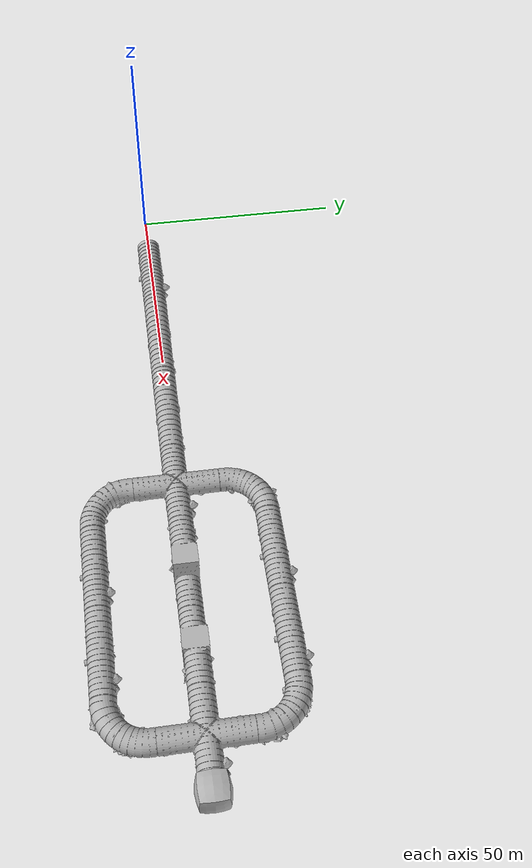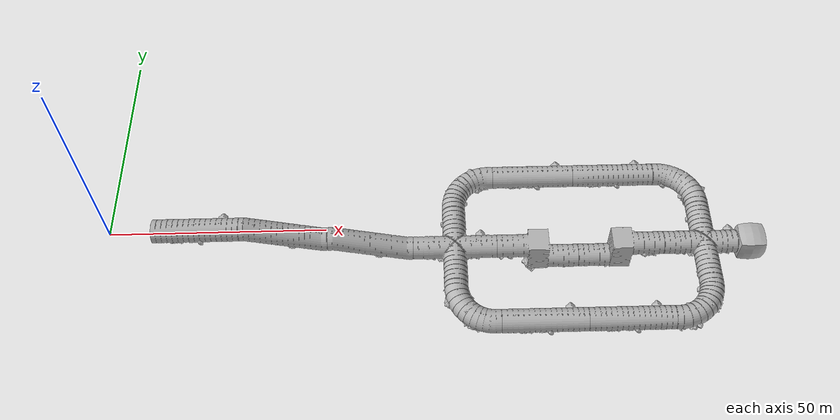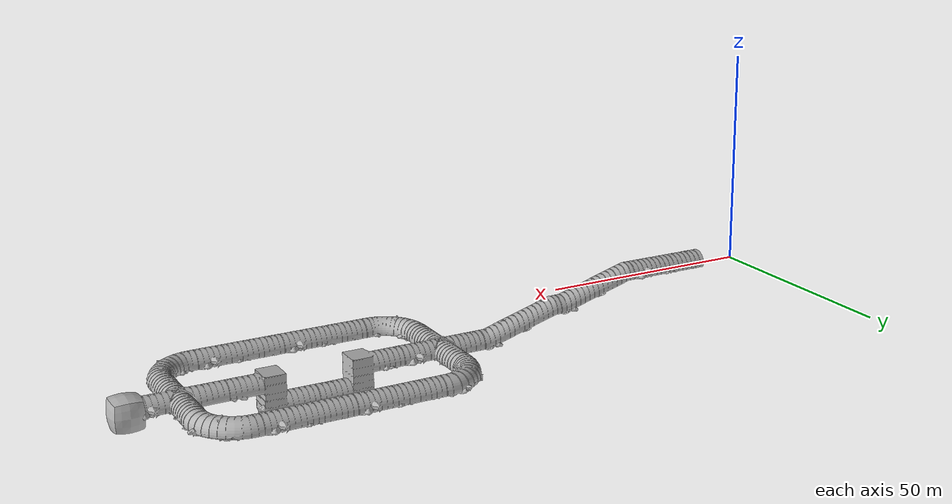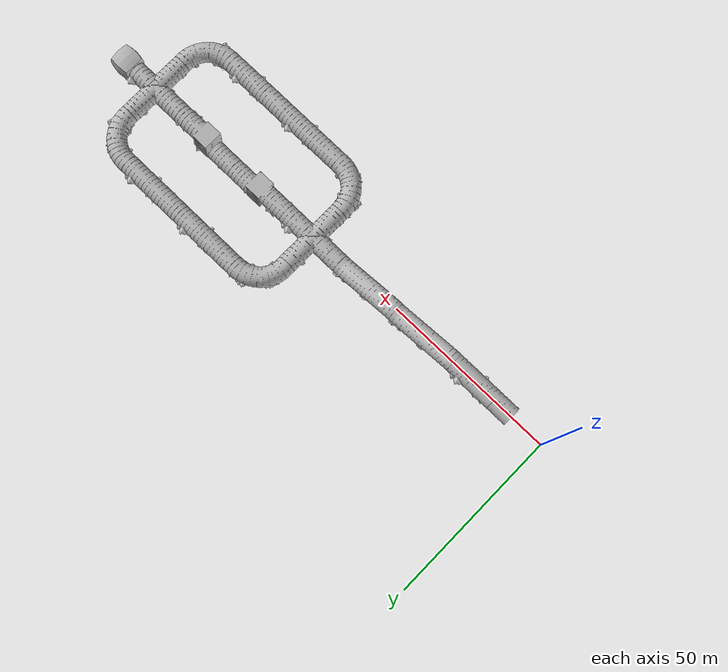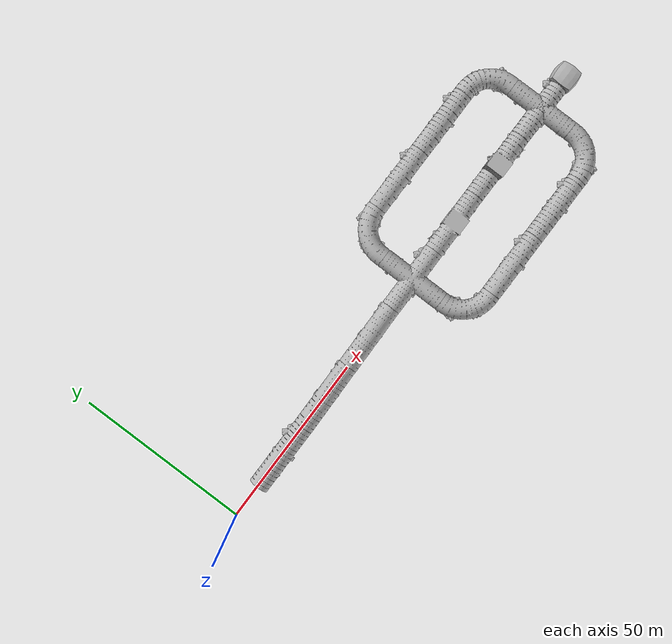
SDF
<sdf version="1.6">
 <world name="rough_tunnel_tiles">
  <scene>
   <ambient>0.2 0.2 0.2 1.0</ambient>
   <background>0.34 0.39 0.43 1.0</background>
   <grid>false</grid>
   <origin_visual>false</origin_visual>
  </scene>
  <include>
   <name>tile_0</name>
   <uri>model://rough_tunnel_tile_90deg_turn</uri>
   <pose>80.000000 20.000000 -10.000000 0 0 0.000000</pose>
  </include>
  <include>
   <name>tile_1</name>
   <uri>model://rough_tunnel_tile_straight</uri>
   <pose>100.000000 20.000000 -10.000000 0 0 1.570796</pose>
  </include>
  <include>
   <name>tile_2</name>
   <uri>model://rough_tunnel_tile_straight</uri>
   <pose>120.000000 20.000000 -10.000000 0 0 1.570796</pose>
  </include>
  <include>
   <name>tile_3</name>
   <uri>model://rough_tunnel_tile_90deg_turn</uri>
   <pose>140.000000 20.000000 -10.000000 0 0 4.712389</pose>
  </include>
  <include>
   <name>tile_4</name>
   <uri>model://rough_tunnel_tile_straight</uri>
   <pose>20.000000 0.000000 0.000000 0 0 1.570796</pose>
  </include>
  <include>
   <name>tile_5</name>
   <uri>model://rough_tunnel_tile_ramp</uri>
   <pose>40.000000 0.000000 -5.000000 0 0 1.570796</pose>
  </include>
  <include>
   <name>tile_6</name>
   <uri>model://rough_tunnel_tile_ramp</uri>
   <pose>60.000000 0.000000 -10.000000 0 0 1.570796</pose>
  </include>
  <include>
   <name>tile_7</name>
   <uri>model://rough_tunnel_tile_4way_intersection</uri>
   <pose>80.000000 0.000000 -10.000000 0 0 0.000000</pose>
  </include>
  <include>
   <name>tile_8</name>
   <uri>model://rough_tunnel_tile_vertical_shaft</uri>
   <pose>100.000000 0.000000 -15.000000 0 0 1.570796</pose>
  </include>
  <include>
   <name>tile_9</name>
   <uri>model://rough_tunnel_tile_vertical_shaft</uri>
   <pose>120.000000 0.000000 -15.000000 0 0 4.712389</pose>
  </include>
  <include>
   <name>tile_10</name>
   <uri>model://rough_tunnel_tile_4way_intersection</uri>
   <pose>140.000000 0.000000 -10.000000 0 0 0.000000</pose>
  </include>
  <include>
   <name>tile_11</name>
   <uri>model://tunnel_tile_blocker</uri>
   <pose>151.000000 0.000000 -10.000000 0 0 0.000000</pose>
  </include>
  <include>
   <name>tile_12</name>
   <uri>model://rough_tunnel_tile_90deg_turn</uri>
   <pose>80.000000 -20.000000 -10.000000 0 0 1.570796</pose>
  </include>
  <include>
   <name>tile_13</name>
   <uri>model://rough_tunnel_tile_straight</uri>
   <pose>100.000000 -20.000000 -10.000000 0 0 1.570796</pose>
  </include>
  <include>
   <name>tile_14</name>
   <uri>model://rough_tunnel_tile_straight</uri>
   <pose>120.000000 -20.000000 -10.000000 0 0 1.570796</pose>
  </include>
  <include>
   <name>tile_15</name>
   <uri>model://rough_tunnel_tile_90deg_turn</uri>
   <pose>140.000000 -20.000000 -10.000000 0 0 3.141593</pose>
  </include>
  <plugin name="game_logic_plugin" filename="libGameLogicPlugin.so">
   <logging><filename_prefix>subt_rough_tunnel_tiles</filename_prefix></logging>
  </plugin>
  <plugin name="comms_broker_plugin" filename="libCommsBrokerPlugin.so">
   <comms_model>
    <neighbor_distance_min>0.0</neighbor_distance_min>
    <neighbor_distance_max>100.0</neighbor_distance_max>
    <comms_distance_min>0.0</comms_distance_min>
    <comms_distance_max>100.0</comms_distance_max>
    <comms_drop_probability_min>0.0</comms_drop_probability_min>
    <comms_drop_probability_max>0.0</comms_drop_probability_max>
    <comms_outage_probability>0.0</comms_outage_probability>
    <comms_outage_duration_min>0.0</comms_outage_duration_min>
    <comms_outage_duration_max>10.0</comms_outage_duration_max>
   </comms_model>
  </plugin>
  <plugin name="ros_interface_plugin" filename="librotors_gazebo_ros_interface_plugin.so"/>
  <wind><linear_velocity>0.000000 0.000000 0.000000</linear_velocity></wind>
  <plugin name="wind" filename="libWindPlugin.so">
   <horizontal>
    <magnitude>
     <time_for_rise>10</time_for_rise>
     <sin><amplitude_percent>0.05</amplitude_percent><period>60</period></sin>
     <noise type="gaussian"><mean>0</mean><stddev>0.0002</stddev></noise>
    </magnitude>
    <direction>
     <time_for_rise>30</time_for_rise>
     <sin><amplitude>5</amplitude><period>20</period></sin>
     <noise type="gaussian"><mean>0</mean><stddev>0.03</stddev></noise>
    </direction>
   </horizontal>
   <vertical><noise type="gaussian"><mean>0</mean><stddev>0.03</stddev></noise></vertical>
  </plugin>
 </world>
</sdf>

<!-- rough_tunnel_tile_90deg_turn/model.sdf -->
<sdf version="1.6">
  <model name="rough_tunnel_tile_90deg_turn">
    <static>true</static>
    <link name="link">
      <collision name="collision">
        <geometry>
          <mesh>
            <uri>model://rough_tunnel_tile_90deg_turn/meshes/90DegOne_Collider.DAE</uri>
          </mesh>
        </geometry>
      </collision>
      <collision name="collision_ground">
        <pose>3.5 -3.5 0 0 0 0</pose>
        <geometry>
          <box>
            <size>13 13 0.001</size>
          </box>
        </geometry>
      </collision>
      <visual name="visual">
        <geometry>
          <mesh>
            <uri>model://rough_tunnel_tile_90deg_turn/meshes/90DegOne.DAE</uri>
          </mesh>
        </geometry>
      </visual>
    </link>
  </model>
</sdf>

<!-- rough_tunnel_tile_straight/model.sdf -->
<sdf version="1.6">
  <model name="rough_tunnel_tile_straight">
    <static>true</static>
    <link name="link">
      <collision name="collision">
        <geometry>
          <mesh>
            <uri>model://rough_tunnel_tile_straight/meshes/Straight_Collider.DAE</uri>
          </mesh>
        </geometry>
      </collision>
      <collision name="collision_ground">
        <geometry>
          <box>
            <size>5 20 0.001</size>
          </box>
        </geometry>
      </collision>
      <visual name="visual">
        <geometry>
          <mesh>
            <uri>model://rough_tunnel_tile_straight/meshes/Straight.DAE</uri>
          </mesh>
        </geometry>
      </visual>
    </link>
  </model>
</sdf>

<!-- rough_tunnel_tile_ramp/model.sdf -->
<sdf version="1.6">
  <model name="rough_tunnel_tile_ramp">
    <static>true</static>
    <link name="link">
      <collision name="collision">
        <geometry>
          <mesh>
            <uri>model://rough_tunnel_tile_ramp/meshes/ElevationChange_Collider.DAE</uri>
          </mesh>
        </geometry>
      </collision>
      <collision name="collision_ground">
        <geometry>
          <box>
            <size>5 20 0.001</size>
          </box>
        </geometry>
      </collision>
      <visual name="visual">
        <geometry>
          <mesh>
            <uri>model://rough_tunnel_tile_ramp/meshes/ElevationChange.DAE</uri>
          </mesh>
        </geometry>
      </visual>
    </link>
  </model>
</sdf>

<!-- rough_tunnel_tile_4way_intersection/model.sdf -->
<sdf version="1.6">
  <model name="rough_tunnel_tile_4way_intersection">
    <static>true</static>
    <link name="link">
      <collision name="collision">
        <geometry>
          <mesh>
            <uri>model://rough_tunnel_tile_4way_intersection/meshes/4WayIntersection_Collider.DAE</uri>
          </mesh>
        </geometry>
      </collision>
      <collision name="collision_ground">
        <geometry>
          <box>
            <size>20 20 0.001</size>
          </box>
        </geometry>
      </collision>
      <visual name="visual">
        <geometry>
          <mesh>
            <uri>model://rough_tunnel_tile_4way_intersection/meshes/4WayIntersection.DAE</uri>
          </mesh>
        </geometry>
      </visual>
    </link>
  </model>
</sdf>

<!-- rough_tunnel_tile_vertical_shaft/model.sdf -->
<sdf version="1.6">
  <model name="rough_tunnel_tile_vertical_shaft">
    <static>true</static>
    <link name="link">
      <collision name="collision">
        <geometry>
          <mesh>
            <uri>model://rough_tunnel_tile_vertical_shaft/meshes/VerticalShaft_Collider.DAE</uri>
          </mesh>
        </geometry>
      </collision>
      <collision name="collision_ground_1">
        <pose>0 6.14028 5 0 0 0</pose>
        <geometry>
          <box>
            <size>6.19538 7.71943 0.001</size>
          </box>
        </geometry>
      </collision>

      <collision name="collision_ground_2">
        <pose>0 2.28057 2.5 0 0 0</pose>
        <geometry>
          <box>
            <size>6.19538 0.001 5</size>
          </box>
        </geometry>
      </collision>
      <collision name="collision_ground_3">
        <pose>0 -3.8572 0 0 0 0</pose>
        <geometry>
          <box>
            <size>6.19538 12.2806 0.001</size>
          </box>
        </geometry>
      </collision>
      <collision name="collision_ground_4">
        <pose>0 -2.42079 6.38525 0 0 0</pose>
        <geometry>
          <box>
            <size>6.19538 0.001 5.69769</size>
          </box>
        </geometry>
      </collision>
      <collision name="collision_ground_5">
        <pose>-2.83306 0.079873 4.58439 0 0 0</pose>
        <geometry>
          <box>
            <size>0.001 5.1333 9.16878</size>
          </box>
        </geometry>
      </collision>
      <collision name="collision_ground_6">
        <pose>2.83306 0.079873 4.58439 0 0 0</pose>
        <geometry>
          <box>
            <size>0.001 5.1333 9.16878</size>
          </box>
        </geometry>
      </collision>
      <collision name="collision_ground_7">
        <pose>0 0.079873 8.72854 0 0 0</pose>
        <geometry>
          <box>
            <size>6.95991 5.1333 0.001</size>
          </box>
        </geometry>
      </collision>

      <visual name="visual">
        <geometry>
          <mesh>
            <uri>model://rough_tunnel_tile_vertical_shaft/meshes/VerticalShaft.DAE</uri>
          </mesh>
        </geometry>
      </visual>
    </link>
  </model>
</sdf>

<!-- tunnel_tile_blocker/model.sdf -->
<sdf version="1.6">
  <model name="tunnel_tile_blocker">
    <static>true</static>
    <link name="link">
      <pose>0 0 0 0 0 0</pose>
      <collision name="collision">
        <geometry>
          <mesh>
            <uri>model://tunnel_tile_blocker/meshes/tunnel_tile_blocker.dae</uri>
          </mesh>
        </geometry>
      </collision>
      <visual name="visual">
        <geometry>
          <mesh>
            <uri>model://tunnel_tile_blocker/meshes/tunnel_tile_blocker.dae</uri>
          </mesh>
        </geometry>
      </visual>
    </link>
  </model>
</sdf>
